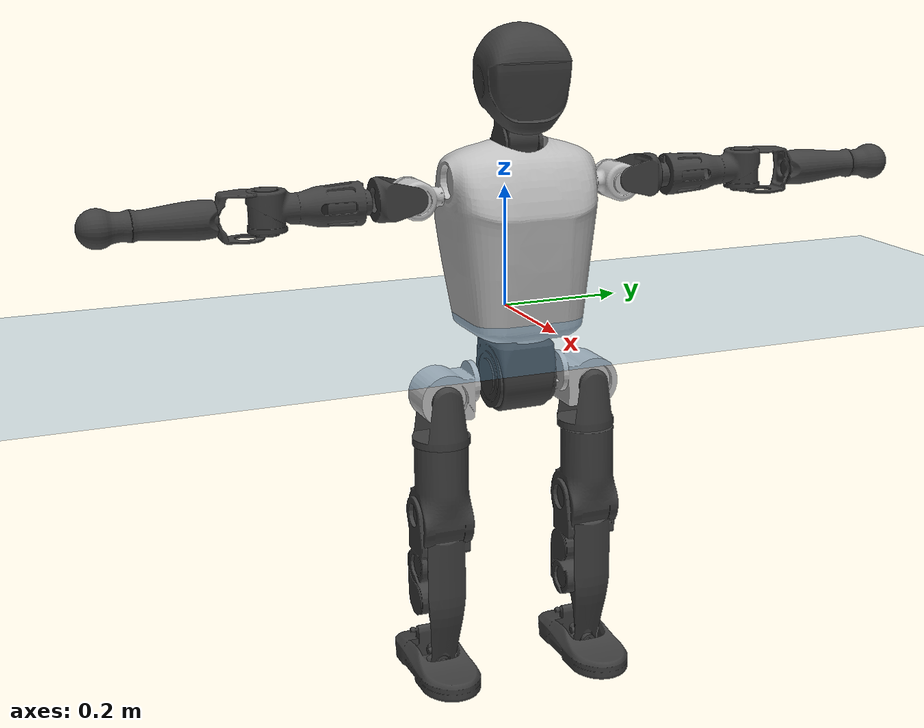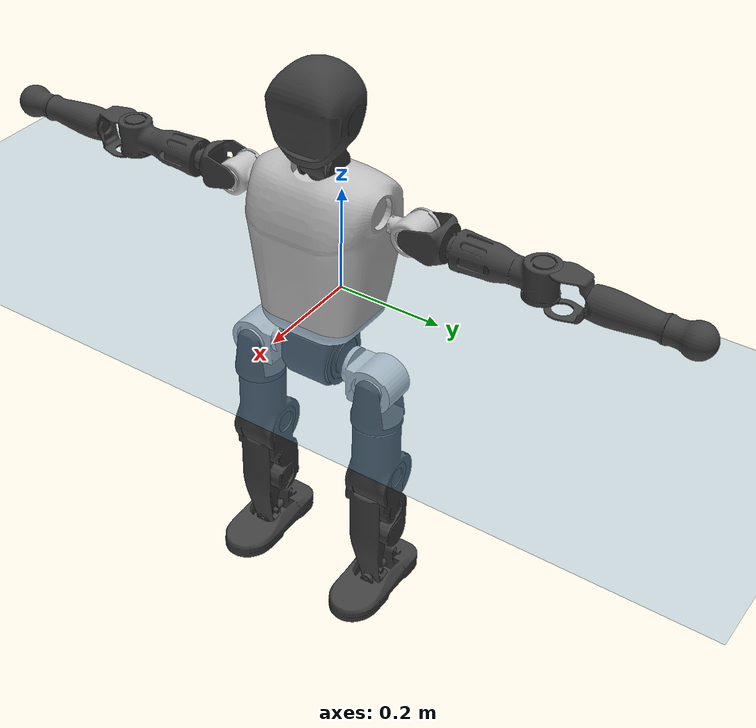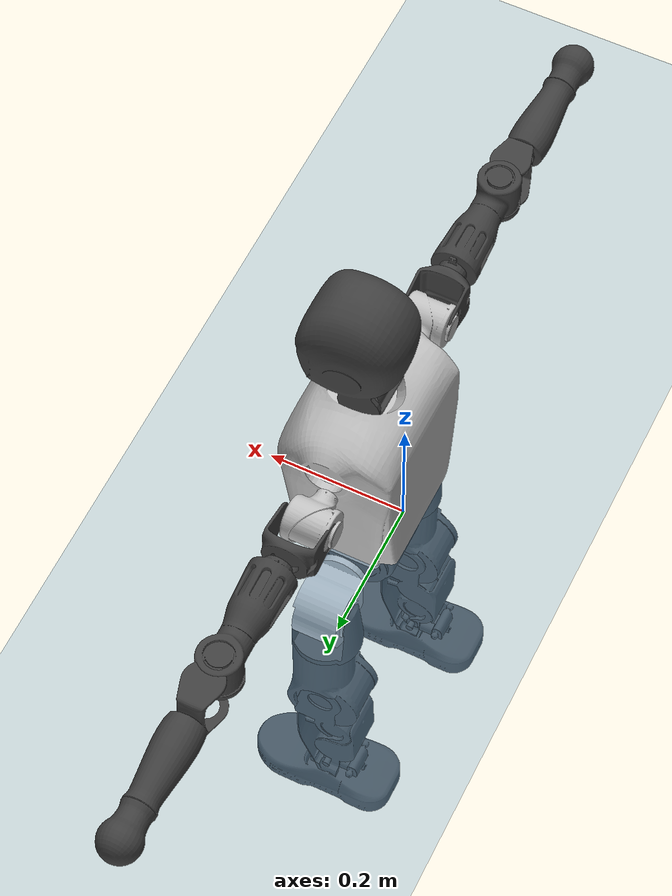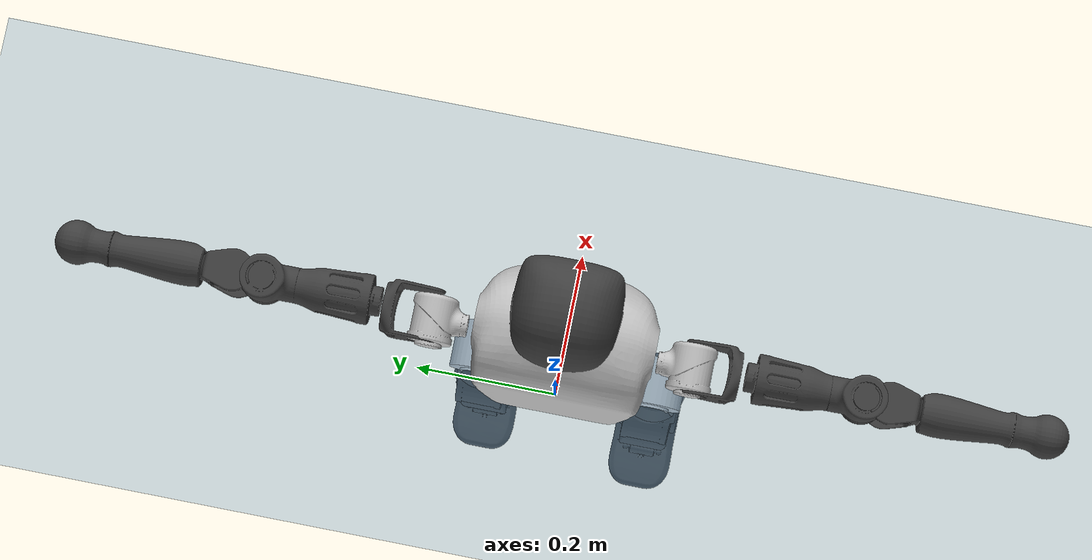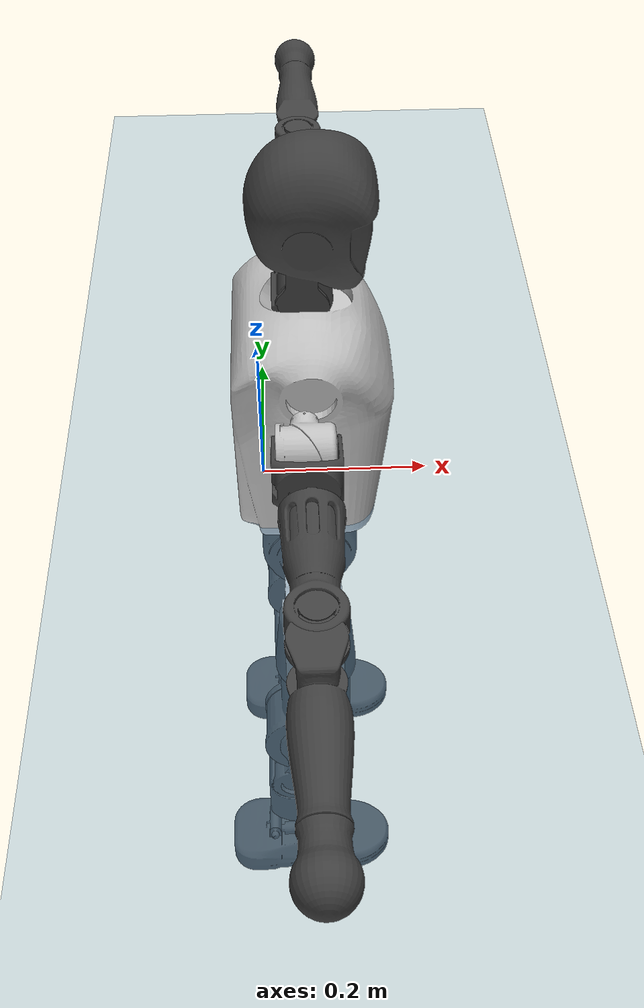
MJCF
<mujoco model="T1">
  <compiler angle="radian" assetdir="assets" balanceinertia="true" inertiafromgeom="false"/>

  <option timestep="0.005" density="1.2" viscosity="2e-05"/>

  <size nkey="1"/>

  <visual>
    <quality shadowsize="8192"/>
    <map shadowclip="0.5"/>
  </visual>

  <default>
    <default class="/">
      <joint armature="0.01" damping="0.01" frictionloss="0.1"/>
      <geom contype="0" conaffinity="0" group="1" solref="-1000 -80"/>
      <site size="0.01 0.005 0.005" group="5"/>
      <general forcelimited="true" biastype="affine" gainprm="25" biasprm="0 -25 -0.6"/>
      <default class="t1">
        <geom rgba="0.25 0.25 0.25 1"/>
        <default class="visual">
          <geom type="mesh" group="2"/>
        </default>
        <default class="collision">
          <geom group="3"/>
        </default>
        <default class="foot">
          <geom size="0.1115 0.05 0.015" type="box" condim="6" group="4" priority="1" solimp="0.015 1 0.015"/>
        </default>
        <default class="reward_collision_sphere">
          <geom group="5" rgba="1 0 0 1"/>
        </default>
      </default>
    </default>
  </default>

  <asset>
    <texture type="skybox" colorspace="auto" name="//unnamed_texture_0" builtin="gradient" rgb1="0.95 0.95 0.95" rgb2="0.95 0.95 0.95" width="100" height="600"/>
    <texture type="2d" colorspace="auto" name="texplane" builtin="checker" rgb1="0.345 0.575 0.748" rgb2="0.345 0.575 0.748" markrgb="1 1 1" width="512" height="512"/>
    <material name="MatPlane" class="/" texture="texplane" texuniform="true" texrepeat="2 2" specular="0.9"/>
    <mesh name="Trunk" class="/" file="Trunk.stl"/>
    <mesh name="H1" class="/" file="H1.stl"/>
    <mesh name="H2" class="/" file="H2.stl"/>
    <mesh name="AL1" class="/" file="AL1.stl"/>
    <mesh name="AL2" class="/" file="AL2.stl"/>
    <mesh name="AL3" class="/" file="AL3.stl"/>
    <mesh name="left_hand_link" class="/" file="left_hand_link.stl"/>
    <mesh name="AR1" class="/" file="AR1.stl"/>
    <mesh name="AR2" class="/" file="AR2.stl"/>
    <mesh name="AR3" class="/" file="AR3.stl"/>
    <mesh name="right_hand_link" class="/" file="right_hand_link.stl"/>
    <mesh name="Waist" class="/" file="Waist.stl"/>
    <mesh name="Hip_Pitch_Left" class="/" file="Hip_Pitch_Left.stl"/>
    <mesh name="Hip_Roll_Left" class="/" file="Hip_Roll_Left.stl"/>
    <mesh name="Hip_Yaw_Left" class="/" file="Hip_Yaw_Left.stl"/>
    <mesh name="Shank_Left" class="/" file="Shank_Left.stl"/>
    <mesh name="Ankle_Cross_Left" class="/" file="Ankle_Cross_Left.stl"/>
    <mesh name="left_foot_link" class="/" file="left_foot_link.stl"/>
    <mesh name="Hip_Pitch_Right" class="/" file="Hip_Pitch_Right.stl"/>
    <mesh name="Hip_Roll_Right" class="/" file="Hip_Roll_Right.stl"/>
    <mesh name="Hip_Yaw_Right" class="/" file="Hip_Yaw_Right.stl"/>
    <mesh name="Shank_Right" class="/" file="Shank_Right.stl"/>
    <mesh name="Ankle_Cross_Right" class="/" file="Ankle_Cross_Right.stl"/>
    <mesh name="right_foot_link" class="/" file="right_foot_link.stl"/>
  </asset>

  <worldbody>
    <geom name="floor" class="/" size="100 100 0.125" type="plane" group="0" material="MatPlane"/>
    <light name="toplight_shadow" class="/" pos="0 0 5" dir="0.0990148 0.0990148 -0.990148" type="directional" ambient="0.04 0.04 0.04" diffuse="0.55 0.55 0.55" specular="0.12 0.12 0.12"/>
    <light name="toplight_fill" class="/" pos="0 0 5" dir="0.0990148 0.0990148 -0.990148" type="directional" castshadow="false" ambient="0.04 0.04 0.04" diffuse="0.3 0.3 0.3" specular="0.08 0.08 0.08"/>
    <body name="trunk" childclass="t1" pos="0.000674854 -0.000988594 0.00491149" quat="0.999996 0.00277506 -0.000295562 -0.000805624">
      <inertial pos="0.0497452 -0.00196139 0.0967882" quat="0.999975 0.00240665 -0.00670178 0.00026567" mass="13.1094" diaginertia="0.0566293 0.232795 0.0348483"/>
      <joint name="//unnamed_joint_0" type="free" armature="0" damping="0" frictionloss="0"/>
      <geom name="//unnamed_geom_1" class="visual" rgba="0.76 0.76 0.76 1" mesh="Trunk"/>
      <geom name="//unnamed_geom_2" class="collision" size="0.0758643 0.101152 0.151729" pos="0.0539792 0 0.108116" type="box"/>
      <geom name="//unnamed_geom_3" class="reward_collision_sphere" size="0.116325" pos="0.0539792 0 0.090097"/>
      <geom name="//unnamed_geom_4" class="reward_collision_sphere" size="0.0151729" pos="0.0539792 0.104886 0"/>
      <geom name="//unnamed_geom_5" class="reward_collision_sphere" size="0.0151729" pos="0.0539792 -0.104886 0"/>
      <geom name="//unnamed_geom_6" class="reward_collision_sphere" size="0.0151729" pos="0.0539792 0.132033 0.162175"/>
      <geom name="//unnamed_geom_7" class="reward_collision_sphere" size="0.0151729" pos="0.0539792 -0.132033 0.162175"/>
      <site name="imu" pos="0.023625 -0.010538 0.000878934" size="0.0101152"/>
      <camera name="track" pos="0 -2.4679 0" quat="0.707107 0.707107 0 0" mode="trackcom"/>
      <camera name="ego_camera" pos="0.109758 0 0.378407" quat="-0.5 -0.5 0.5 0.5"/>
      <body name="H1" pos="0.0544685 0.000130771 0.216618" quat="0.999998 -0.000831051 0.00166678 -0.000982113">
        <inertial pos="-0.00363322 -0.00156178 0.0539803" quat="0.767938 -0.0128528 -0.00292213 0.640389" mass="0.468012" diaginertia="0.000146807 0.000628627 9.33961e-05"/>
        <joint name="AAHead_yaw" pos="0 0 0" axis="-0.00565596 -0.00708186 0.999959" range="-1.44112 1.52984" armature="0.011012" damping="0.00266062" frictionloss="0.107747"/>
        <geom name="//unnamed_geom_8" class="visual" mesh="H1"/>
        <body name="H2" pos="-0.00348114 0.00192522 0.0532647" quat="0.999996 0.000486588 -0.00253158 -0.000703654">
          <inertial pos="0.00703933 0.00325211 0.0896461" quat="0.988334 0.107563 -0.074667 -0.077786" mass="0.694594" diaginertia="0.00121741 0.0056237 0.00102247"/>
          <joint name="Head_pitch" pos="0 0 0" axis="-0.00739449 -0.999748 -0.0211864" range="-1.18349 0.2535" armature="0.00825668" damping="0" frictionloss="0.0738807"/>
          <geom name="//unnamed_geom_9" class="visual" mesh="H2"/>
          <geom name="//unnamed_geom_10" class="collision" size="0.0809219" pos="0.00899654 0 0.0991067"/>
          <geom name="//unnamed_geom_11" class="reward_collision_sphere" size="0.0910372" pos="0.0179931 0 0.090097"/>
        </body>
      </body>
      <body name="AL1" pos="0.0471252 0.131188 0.197638" quat="0.999999 0.00133933 -0.000149474 0.000100065">
        <inertial pos="0.00479367 0.0543879 -0.000870624" quat="0.501372 0.488767 -0.508701 0.500956" mass="0.553405" diaginertia="0.000832315 0.00342501 0.000170494"/>
        <joint name="Left_Shoulder_Pitch" pos="0 0 0" axis="-0.000279988 0.999998 0.00210556" range="-3.34118 1.21106" armature="0.010806" damping="0.00715654" frictionloss="0.0952585"/>
        <geom name="//unnamed_geom_12" class="visual" rgba="0.76 0.76 0.76 1" mesh="AL1"/>
        <body name="AL2" pos="0.00351941 0.058131 0.00567212" quat="0.999997 -0.00236235 -0.00055507 5.60677e-05">
          <inertial pos="0.00241322 0.0460751 0.00370822" quat="0.485011 0.512207 -0.491545 0.510678" mass="0.160689" diaginertia="0.000230121 0.000998894 0.000107856"/>
          <joint name="Left_Shoulder_Roll" pos="0 0 0" axis="-0.999696 0.0243925 0.00362408" range="-1.58071 1.69521" armature="0.0114886" damping="0.00979202" frictionloss="0.125703"/>
          <geom name="//unnamed_geom_13" class="visual" mesh="AL2"/>
          <body name="AL3" pos="0.00531546 0.0744607 -0.000982807" quat="0.999999 0.00123125 0.00026306 0.000913213">
            <inertial pos="-0.00255291 0.10503 -0.00395718" quat="0.70568 0.70852 -0.000507882 0.00386521" mass="1.04517" diaginertia="0.00771541 0.0360198 0.000370724"/>
            <joint name="Left_Elbow_Pitch" pos="0 0 0" axis="-0.00412165 -0.999777 0.0207224" range="-2.2281 2.27433" armature="0.00921402" damping="0.00729526" frictionloss="0.106519"/>
            <geom name="//unnamed_geom_14" class="visual" mesh="AL3"/>
            <geom name="//unnamed_geom_15" class="collision" size="0.0303457 0.0758643" pos="0 0.0616975 0" quat="0.707105 0.707108 0 0" type="cylinder"/>
            <geom name="//unnamed_geom_16" class="reward_collision_sphere" size="0.0364149"/>
            <body name="left_hand_link" pos="0.00117421 0.186119 -0.00573054" quat="1 -0.000543744 1.16635e-05 -0.000576674">
              <inertial pos="-5.8703e-05 0.135864 -0.00122378" quat="0.707968 0.706229 -0.00118911 0.00461625" mass="0.310817" diaginertia="0.00476619 0.0212733 0.000118496"/>
              <joint name="Left_Elbow_Yaw" pos="0 0 0" axis="-0.0176093 -0.00524458 0.999831" stiffness="0.00428194" range="-2.40624 0.0203732" armature="0.0116243" damping="0.0161482" frictionloss="0.0968386"/>
              <geom name="//unnamed_geom_17" class="visual" mesh="left_hand_link"/>
              <geom name="//unnamed_geom_18" class="collision" size="0.0303457 0.0885084" pos="0 0.160413 0" quat="0.707105 0.707108 0 0" type="cylinder"/>
              <geom name="//unnamed_geom_19" class="reward_collision_sphere" size="0.0505762"/>
              <geom name="//unnamed_geom_20" class="reward_collision_sphere" size="0.0354033" pos="0 0.135734 0"/>
              <geom name="//unnamed_geom_21" class="reward_collision_sphere" size="0.0354033" pos="0 0.265299 0"/>
            </body>
          </body>
        </body>
      </body>
      <body name="AR1" pos="0.0496488 -0.126893 0.194299" quat="0.999997 0.00127093 0.00207124 0.000344438">
        <inertial pos="-0.000529077 -0.0564208 0.00235978" quat="0.505298 0.494968 -0.5058 0.493808" mass="0.530975" diaginertia="0.000817904 0.00360671 0.000170364"/>
        <joint name="Right_Shoulder_Pitch" pos="0 0 0" axis="-0.0130768 -0.999877 -0.00863113" stiffness="0.0139798" range="-1.23466 3.28979" armature="0.00922123" damping="0.016807" frictionloss="0.112228"/>
        <geom name="//unnamed_geom_22" class="visual" rgba="0.76 0.76 0.76 1" mesh="AR1"/>
        <body name="AR2" pos="0.000586986 -0.0552787 0.00307364" quat="1 0.00020088 0.000275135 -0.000194156">
          <inertial pos="0.00213919 -0.0472958 -0.00117541" quat="0.509193 0.490341 -0.511475 0.48855" mass="0.173212" diaginertia="0.000219346 0.000958745 0.000109762"/>
          <joint name="Right_Shoulder_Roll" pos="0 0 0" axis="-0.999967 0.00789014 -0.00207773" range="-1.69331 1.56151" armature="0.00995047" damping="0.0108042" frictionloss="0.0827886"/>
          <geom name="//unnamed_geom_23" class="visual" mesh="AR2"/>
          <body name="AR3" pos="0.00300102 -0.0775116 -0.00224491" quat="0.999999 -0.000127024 -0.000359207 0.0010414">
            <inertial pos="0.00538771 -0.104207 0.00260164" quat="0.70293 0.711244 0.00326048 0.00334585" mass="1.01655" diaginertia="0.00786319 0.0388959 0.000368889"/>
            <joint name="Right_Elbow_Pitch" pos="0 0 0" axis="0.000541567 0.999999 0.00117721" stiffness="0.0265157" range="-2.25892 2.26104" armature="0.0114442" damping="0.00146488" frictionloss="0.0904671"/>
            <geom name="//unnamed_geom_24" class="visual" mesh="AR3"/>
            <geom name="//unnamed_geom_25" class="collision" size="0.0303457 0.0758643" pos="0 -0.0616975 0" quat="0.707105 0.707108 0 0" type="cylinder"/>
            <geom name="//unnamed_geom_26" class="reward_collision_sphere" size="0.0364149"/>
            <body name="right_hand_link" pos="-0.00116736 -0.180161 -0.00558021" quat="1 0.000459297 0.000430328 -0.000115097">
              <inertial pos="0.00150504 -0.137342 -0.0012594" quat="0.712543 0.701612 0.00451193 -0.00148812" mass="0.334316" diaginertia="0.0048609 0.0227287 0.000127621"/>
              <joint name="Right_Elbow_Yaw" pos="0 0 0" axis="0.00471086 -0.000508697 0.999989" range="-0.0434139 2.44387" armature="0.0093305" damping="0.00563067" frictionloss="0.109798"/>
              <geom name="//unnamed_geom_27" class="visual" mesh="right_hand_link"/>
              <geom name="//unnamed_geom_28" class="collision" size="0.0303457 0.0885084" pos="0 -0.160413 0" quat="0.707105 0.707108 0 0" type="cylinder"/>
              <geom name="//unnamed_geom_29" class="reward_collision_sphere" size="0.0505762"/>
              <geom name="//unnamed_geom_30" class="reward_collision_sphere" size="0.0354033" pos="0 -0.135734 0"/>
              <geom name="//unnamed_geom_31" class="reward_collision_sphere" size="0.0354033" pos="0 -0.265299 0"/>
            </body>
          </body>
        </body>
      </body>
      <body name="Waist" pos="0.054066 -0.0041542 -0.106478" quat="1 -0.000407677 0.000370137 0.000570595">
        <inertial pos="0.00272623 0.000295803 0.00796752" quat="0.98354 0.00228193 -0.180675 0.000809399" mass="2.74579" diaginertia="0.0032848 0.0147612 0.00291695"/>
        <joint name="Waist" pos="0 0 0" axis="0.0114126 -0.00378658 0.999928" range="-1.52985 1.57611" armature="0.0102597" damping="0.0252015" frictionloss="0.105047"/>
        <geom name="//unnamed_geom_32" class="visual" mesh="Waist"/>
        <body name="Hip_Pitch_Left" pos="0.00384243 0.124765 -0.00416759" quat="1 -4.02022e-05 4.05321e-05 0.000233335">
          <inertial pos="0.00189822 -0.00854905 -0.0106248" quat="0.975841 0.218059 0.0105901 -0.00846144" mass="0.992822" diaginertia="0.00104716 0.00422514 0.000762139"/>
          <joint name="Left_Hip_Pitch" pos="0 0 0" axis="-0.0018611 0.999995 -0.00250901" stiffness="0.00991078" range="-1.859 1.57924" armature="0.00988774" damping="0.0193119" frictionloss="0.117469"/>
          <geom name="//unnamed_geom_33" class="visual" rgba="0.76 0.76 0.76 1" mesh="Hip_Pitch_Left"/>
          <body name="Hip_Roll_Left" pos="0.00105889 -0.000447129 -0.0216859" quat="1 0.000238018 0.000454126 0.000274408">
            <inertial pos="0.000914155 -0.00256165 -0.0477696" quat="0.706362 -0.00323813 -0.00880653 0.707788" mass="0.379973" diaginertia="0.000973363 0.00422401 0.000301026"/>
            <joint name="Left_Hip_Roll" pos="0 0 0" axis="-0.999974 0.000287897 0.00715627" stiffness="0.00633882" range="-1.60311 0.212429" armature="0.0102006" damping="0.0025959" frictionloss="0.109583"/>
            <geom name="//unnamed_geom_34" class="visual" mesh="Hip_Roll_Left"/>
            <geom name="//unnamed_geom_35" class="reward_collision_sphere" size="0.0556338"/>
            <body name="Hip_Yaw_Left" pos="0.00286451 0.00226273 -0.0803676" quat="1 -0.00018564 0.000201548 0.000223232">
              <inertial pos="-0.00359466 5.84494e-05 -0.0759304" quat="0.695206 -0.0417592 -0.0337054 0.716804" mass="2.28791" diaginertia="0.0139843 0.0743337 0.00153619"/>
              <joint name="Left_Hip_Yaw" pos="0 0 0" axis="-0.00575692 0.00987318 -0.999935" stiffness="0.0276231" range="-1.0102 0.963083" armature="0.0110278" damping="0.00474224" frictionloss="0.120357"/>
              <geom name="//unnamed_geom_36" class="visual" mesh="Hip_Yaw_Left"/>
              <geom name="//unnamed_geom_37" class="collision" size="0.0505762 0.0809219" type="cylinder"/>
              <body name="Shank_Left" pos="-0.0114283 -0.00430475 -0.124879" quat="0.999996 0.00261065 0.000768778 -0.000141289">
                <inertial pos="-0.00481455 0.00668084 -0.113832" quat="0.997547 -0.00827437 -0.0389994 0.0575315" mass="1.79545" diaginertia="0.019833 0.0971372 0.00112667"/>
                <joint name="Left_Knee_Pitch" pos="0 0 0" axis="0.0042307 0.999991 -0.000673276" range="-0.0462495 2.35012" armature="0.00930754" damping="0" frictionloss="0.122827"/>
                <geom name="//unnamed_geom_38" class="visual" mesh="Shank_Left"/>
                <geom name="//unnamed_geom_39" class="collision" size="0.0505762 0.0758643" pos="0 0 -0.108116" type="cylinder"/>
                <geom name="//unnamed_geom_40" class="reward_collision_sphere" size="0.0657491"/>
                <body name="Ankle_Cross_Left" pos="0.00545685 -0.00152694 -0.252425" quat="1 3.08983e-05 5.63367e-05 -0.000226249">
                  <inertial pos="-0.000954724 -0.00160651 -0.00586579" quat="0.452053 0.564785 0.530134 0.442294" mass="0.0791149" diaginertia="1.70346e-05 7.3073e-05 6.82999e-06"/>
                  <joint name="Left_Ankle_Pitch" pos="0 0 0" axis="-0.00576936 0.999983 9.10997e-05" range="-0.895722 0.422505" armature="0.00983199" damping="0" frictionloss="0.100739"/>
                  <geom name="//unnamed_geom_41" class="visual" mesh="Ankle_Cross_Left"/>
                  <body name="left_foot_link" pos="-0.0021389 0.00128215 -0.011145" quat="1 0.000149383 -0.000105012 -0.000502907">
                    <inertial pos="0.00045589 0.000252695 -0.0142992" quat="-0.000488507 0.621151 9.06463e-05 0.783691" mass="0.702729" diaginertia="0.00159407 0.00654333 0.00127201"/>
                    <joint name="Left_Ankle_Roll" pos="0 0 0" axis="-1 -4.50119e-06 0.000217044" range="-0.413065 0.457472" armature="0.010102" damping="0" frictionloss="0.102905"/>
                    <geom name="//unnamed_geom_42" class="visual" mesh="left_foot_link"/>
                    <geom name="left_foot" class="foot" size="0.095345 0.0420074 0.0153296" pos="0.00899654 0 -0.0135145"/>
                    <geom name="//unnamed_geom_44" class="reward_collision_sphere" size="0.0525993" pos="0.00899654 0 -0.0135145"/>
                    <geom name="//unnamed_geom_45" class="reward_collision_sphere" size="0.0303457" pos="0.0854671 -0.0283808 -0.0135145"/>
                    <geom name="//unnamed_geom_46" class="reward_collision_sphere" size="0.0303457" pos="-0.0629758 -0.0283808 -0.0135145"/>
                    <site name="left_foot" class="foot" pos="0.00899654 0 -0.0135145" size="0.0101152"/>
                  </body>
                </body>
              </body>
            </body>
          </body>
        </body>
        <body name="Hip_Pitch_Right" pos="0.00159066 -0.131909 -0.00387974" quat="0.999997 -0.00210836 -0.000545478 -0.000787249">
          <inertial pos="0.000115974 0.0148883 -0.0137973" quat="0.973491 -0.228342 0.0107856 -0.00768692" mass="1.08851" diaginertia="0.001124 0.00431847 0.000763859"/>
          <joint name="Right_Hip_Pitch" pos="0 0 0" axis="-1.82786e-05 -0.999973 -0.00738228" range="-1.58472 1.86961" armature="0.00976106" damping="0.00650117" frictionloss="0.0743928"/>
          <geom name="//unnamed_geom_47" class="visual" rgba="0.76 0.76 0.76 1" mesh="Hip_Pitch_Right"/>
          <body name="Hip_Roll_Right" pos="0.00364774 -0.00222945 -0.0202997" quat="1 -0.000383327 -0.000139404 -0.000630223">
            <inertial pos="-0.00052313 -0.000988451 -0.0476213" quat="0.70814 -0.00683573 -0.00675701 0.706006" mass="0.398453" diaginertia="0.00110851 0.00440883 0.000311515"/>
            <joint name="Right_Hip_Roll" pos="0 0 0" axis="-0.999991 0.000897662 0.00406876" stiffness="0.00316409" range="-0.221446 1.53789" armature="0.00969048" damping="0" frictionloss="0.086348"/>
            <geom name="//unnamed_geom_48" class="visual" mesh="Hip_Roll_Right"/>
            <geom name="//unnamed_geom_49" class="reward_collision_sphere" size="0.0556338"/>
            <body name="Hip_Yaw_Right" pos="-0.0031477 0.000769741 -0.0771424" quat="1 0.000341644 -0.000262351 -0.000179199">
              <inertial pos="-0.00309403 -0.00619341 -0.078176" quat="0.712554 -0.0352629 -0.0348369 0.699864" mass="2.36677" diaginertia="0.0155059 0.0796156 0.00162765"/>
              <joint name="Right_Hip_Yaw" pos="0 0 0" axis="0.00557827 -0.00799679 -0.999952" range="-0.968232 1.02418" armature="0.0101228" damping="0" frictionloss="0.0994515"/>
              <geom name="//unnamed_geom_50" class="visual" mesh="Hip_Yaw_Right"/>
              <geom name="//unnamed_geom_51" class="collision" size="0.0505762 0.0809219" type="cylinder"/>
              <body name="Shank_Right" pos="-0.0166235 -0.00257627 -0.126339" quat="1 0.000244858 -6.66572e-05 0.000135229">
                <inertial pos="0.00126711 0.001766 -0.109413" quat="0.999533 -0.0192853 -0.0210608 -0.0109061" mass="1.9411" diaginertia="0.0214286 0.103911 0.00126604"/>
                <joint name="Right_Knee_Pitch" pos="0 0 0" axis="0.00805006 -0.999967 -0.000834532" stiffness="0.00396724" range="-2.32795 0.0770105" armature="0.0100729" damping="0.00791134" frictionloss="0.108611"/>
                <geom name="//unnamed_geom_52" class="visual" mesh="Shank_Right"/>
                <geom name="//unnamed_geom_53" class="collision" size="0.0505762 0.0758643" pos="0 0 -0.108116" type="cylinder"/>
                <geom name="//unnamed_geom_54" class="reward_collision_sphere" size="0.0657491"/>
                <body name="Ankle_Cross_Right" pos="-0.000151902 -0.000771833 -0.248939" quat="1 -1.27976e-05 -0.000741398 -0.000384035">
                  <inertial pos="-0.00473866 6.94497e-05 -0.00924876" quat="0.442973 0.551127 0.551273 0.442869" mass="0.0738211" diaginertia="1.65559e-05 6.93745e-05 6.52521e-06"/>
                  <joint name="Right_Ankle_Pitch" pos="0 0 0" axis="0.00153607 -0.999997 0.00197719" range="-0.482892 0.851884" armature="0.00887762" damping="0.0132125" frictionloss="0.0972948"/>
                  <geom name="//unnamed_geom_55" class="visual" mesh="Ankle_Cross_Right"/>
                  <body name="right_foot_link" pos="-0.00373558 -0.00288308 -0.0123355" quat="1 -0.000341283 -0.00037492 -0.000216871">
                    <inertial pos="0.00139671 -0.00128656 -0.0139072" quat="0.00302552 0.624096 0.0108874 0.781266" mass="0.689214" diaginertia="0.00159656 0.00692123 0.00126812"/>
                    <joint name="Right_Ankle_Roll" pos="0 0 0" axis="-1 0.000306961 -0.000783081" range="-0.4848 0.455359" armature="0.011368" damping="0" frictionloss="0.0679252"/>
                    <geom name="//unnamed_geom_56" class="visual" mesh="right_foot_link"/>
                    <geom name="right_foot" class="foot" size="0.100274 0.0611107 0.0115783" pos="0.00899654 0 -0.0135145"/>
                    <geom name="//unnamed_geom_58" class="reward_collision_sphere" size="0.040461"/>
                    <geom name="//unnamed_geom_59" class="reward_collision_sphere" size="0.0303457" pos="0.00899654 0 -0.0135145"/>
                    <geom name="//unnamed_geom_60" class="reward_collision_sphere" size="0.0303457" pos="0.0854671 0.0283808 -0.0135145"/>
                    <geom name="//unnamed_geom_61" class="reward_collision_sphere" size="0.0303457" pos="-0.0629758 0.0283808 -0.0135145"/>
                    <site name="right_foot" class="foot" pos="0.00899654 0 -0.0135145" size="0.0101152"/>
                  </body>
                </body>
              </body>
            </body>
          </body>
        </body>
      </body>
    </body>
  </worldbody>

  <contact>
    <pair class="/" geom1="floor" geom2="left_foot" name="//unnamed_contact_0"/>
    <pair class="/" geom1="floor" geom2="right_foot" name="//unnamed_contact_1"/>
  </contact>

  <actuator>
    <general name="AAHead_yaw" class="/" joint="AAHead_yaw" forcerange="-7.18006 7.18006" gainprm="23.7019" biasprm="0 -23.7019 -0.621976"/>
    <general name="Head_pitch" class="/" joint="Head_pitch" forcerange="-7.27093 7.27093" gainprm="23.7019" biasprm="0 -23.7019 -0.621976"/>
    <general name="Left_Shoulder_Pitch" class="/" joint="Left_Shoulder_Pitch" forcerange="-17.5272 17.5272" gainprm="23.7019" biasprm="0 -23.7019 -0.621976"/>
    <general name="Left_Shoulder_Roll" class="/" joint="Left_Shoulder_Roll" forcerange="-19.5258 19.5258" gainprm="23.7019" biasprm="0 -23.7019 -0.621976"/>
    <general name="Left_Elbow_Pitch" class="/" joint="Left_Elbow_Pitch" forcerange="-20.6067 20.6067" gainprm="23.7019" biasprm="0 -23.7019 -0.621976"/>
    <general name="Left_Elbow_Yaw" class="/" joint="Left_Elbow_Yaw" forcerange="-18.6154 18.6154" gainprm="23.7019" biasprm="0 -23.7019 -0.621976"/>
    <general name="Right_Shoulder_Pitch" class="/" joint="Right_Shoulder_Pitch" forcerange="-20.1622 20.1622" gainprm="23.7019" biasprm="0 -23.7019 -0.621976"/>
    <general name="Right_Shoulder_Roll" class="/" joint="Right_Shoulder_Roll" forcerange="-17.8858 17.8858" gainprm="23.7019" biasprm="0 -23.7019 -0.621976"/>
    <general name="Right_Elbow_Pitch" class="/" joint="Right_Elbow_Pitch" forcerange="-17.8025 17.8025" gainprm="23.7019" biasprm="0 -23.7019 -0.621976"/>
    <general name="Right_Elbow_Yaw" class="/" joint="Right_Elbow_Yaw" forcerange="-19.0507 19.0507" gainprm="23.7019" biasprm="0 -23.7019 -0.621976"/>
    <general name="Waist" class="/" joint="Waist" forcerange="-30.1724 30.1724" gainprm="23.7019" biasprm="0 -23.7019 -0.621976"/>
    <general name="Left_Hip_Pitch" class="/" joint="Left_Hip_Pitch" forcerange="-45.4915 45.4915" gainprm="23.7019" biasprm="0 -23.7019 -0.621976"/>
    <general name="Left_Hip_Roll" class="/" joint="Left_Hip_Roll" forcerange="-24.2986 24.2986" gainprm="23.7019" biasprm="0 -23.7019 -0.621976"/>
    <general name="Left_Hip_Yaw" class="/" joint="Left_Hip_Yaw" forcerange="-31.1748 31.1748" gainprm="23.7019" biasprm="0 -23.7019 -0.621976"/>
    <general name="Left_Knee_Pitch" class="/" joint="Left_Knee_Pitch" forcerange="-49.7174 49.7174" gainprm="23.7019" biasprm="0 -23.7019 -0.621976"/>
    <general name="Left_Ankle_Pitch" class="/" joint="Left_Ankle_Pitch" forcerange="-20.6385 20.6385" gainprm="23.7019" biasprm="0 -23.7019 -0.621976"/>
    <general name="Left_Ankle_Roll" class="/" joint="Left_Ankle_Roll" forcerange="-15.2075 15.2075" gainprm="23.7019" biasprm="0 -23.7019 -0.621976"/>
    <general name="Right_Hip_Pitch" class="/" joint="Right_Hip_Pitch" forcerange="-52.125 52.125" gainprm="23.7019" biasprm="0 -23.7019 -0.621976"/>
    <general name="Right_Hip_Roll" class="/" joint="Right_Hip_Roll" forcerange="-27.9091 27.9091" gainprm="23.7019" biasprm="0 -23.7019 -0.621976"/>
    <general name="Right_Hip_Yaw" class="/" joint="Right_Hip_Yaw" forcerange="-29.3566 29.3566" gainprm="23.7019" biasprm="0 -23.7019 -0.621976"/>
    <general name="Right_Knee_Pitch" class="/" joint="Right_Knee_Pitch" forcerange="-58.3249 58.3249" gainprm="23.7019" biasprm="0 -23.7019 -0.621976"/>
    <general name="Right_Ankle_Pitch" class="/" joint="Right_Ankle_Pitch" forcerange="-19.6067 19.6067" gainprm="23.7019" biasprm="0 -23.7019 -0.621976"/>
    <general name="Right_Ankle_Roll" class="/" joint="Right_Ankle_Roll" forcerange="-14.2141 14.2141" gainprm="23.7019" biasprm="0 -23.7019 -0.621976"/>
  </actuator>

  <sensor>
    <gyro site="imu" name="imu_angular_velocity"/>
    <velocimeter site="imu" name="imu_linear_velocity"/>
    <framelinvel objtype="site" objname="left_foot" name="left_foot_global_linear_velocity"/>
    <framelinvel objtype="site" objname="right_foot" name="right_foot_global_linear_velocity"/>
  </sensor>

  <keyframe>
    <key name="home" qpos="0 0 0.6385 1 0 0 0 0 0 0 1.4 0 -0.4 0 -1.4 0 0.4 0 -0.4 0 0 0.8 -0.4 0 0.4 0 0 -0.8 0.4 0"/>
  </keyframe>
</mujoco>
